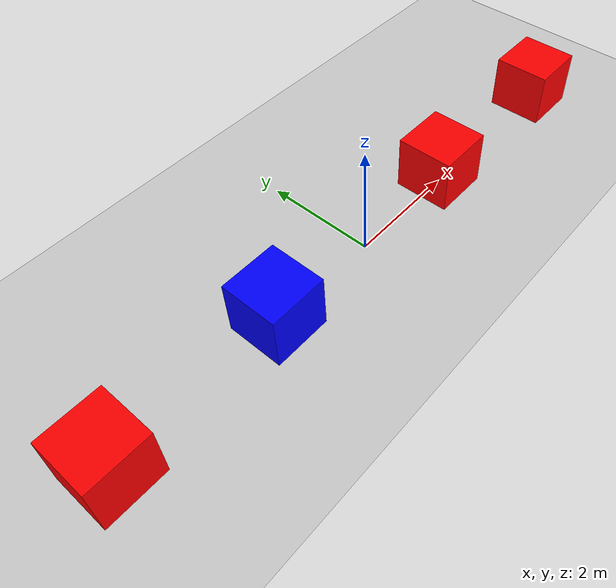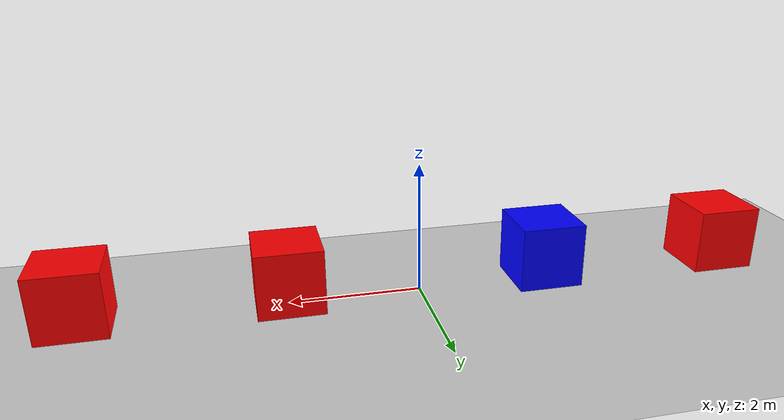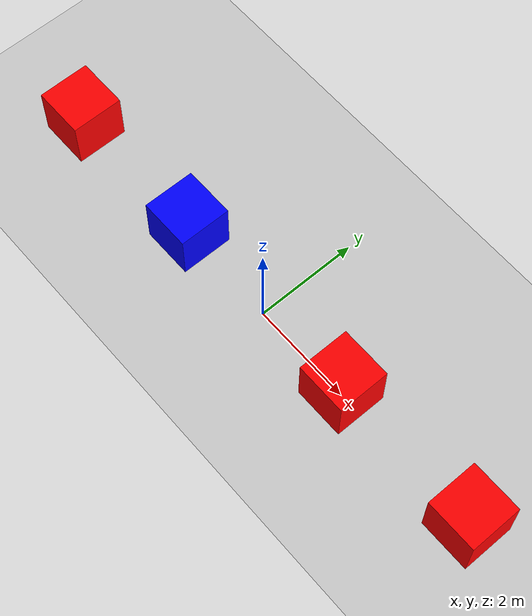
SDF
<?xml version="1.0" ?>
<!--
  Gazebo acoustic-comms plugin demo.
-->
<sdf version="1.6">
  <world name="acoustic_comms">
    <plugin
      filename="gz-sim-apply-link-wrench-system"
      name="gz::sim::systems::ApplyLinkWrench">
    </plugin>

    <physics name="1ms" type="ignored">
      <max_step_size>0.001</max_step_size>
      <real_time_factor>1.0</real_time_factor>
    </physics>
    <plugin
      filename="gz-sim-physics-system"
      name="gz::sim::systems::Physics">
    </plugin>
    <plugin
      filename="gz-sim-user-commands-system"
      name="gz::sim::systems::UserCommands">
    </plugin>
    <plugin
      filename="gz-sim-scene-broadcaster-system"
      name="gz::sim::systems::SceneBroadcaster">
    </plugin>
    <plugin
      filename="gz-sim-acoustic-comms-system"
      name="gz::sim::systems::AcousticComms">
      <max_range>6</max_range>
      <speed_of_sound>1400</speed_of_sound>

      <!-- Values are exaggerated here to make the -->
      <!-- packets drop. -->
      <propagation_model>
        <source_power>0.001</source_power>
        <noise_level>150</noise_level>
        <spectral_efficiency>7</spectral_efficiency>
        <seed>0</seed>
      </propagation_model>

    </plugin>

    <light type="directional" name="sun">
      <cast_shadows>true</cast_shadows>
      <pose>0 0 10 0 0 0</pose>
      <diffuse>1 1 1 1</diffuse>
      <specular>0.5 0.5 0.5 1</specular>
      <attenuation>
        <range>1000</range>
        <constant>0.9</constant>
        <linear>0.01</linear>
        <quadratic>0.001</quadratic>
      </attenuation>
      <direction>-0.5 0.1 -0.9</direction>
    </light>

    <model name="ground_plane">
      <static>true</static>
      <link name="link">
        <collision name="collision">
          <geometry>
            <plane>
              <normal>0 0 1</normal>
              <size>100 100</size>
            </plane>
          </geometry>
        </collision>
        <visual name="visual">
          <geometry>
            <plane>
              <normal>0 0 1</normal>
              <size>100 100</size>
            </plane>
          </geometry>
          <material>
            <ambient>0.8 0.8 0.8 1</ambient>
            <diffuse>0.8 0.8 0.8 1</diffuse>
            <specular>0.8 0.8 0.8 1</specular>
          </material>
        </visual>
      </link>
    </model>

    <model name="box1">
      <pose>2 0 0.5 0 0 0</pose>
      <link name="box_link">
        <inertial>
          <inertia>
            <ixx>0.16666</ixx>
            <ixy>0</ixy>
            <ixz>0</ixz>
            <iyy>0.16666</iyy>
            <iyz>0</iyz>
            <izz>0.16666</izz>
          </inertia>
          <mass>1.0</mass>
        </inertial>
        <collision name="box_collision">
          <geometry>
            <box>
              <size>1 1 1</size>
            </box>
          </geometry>
        </collision>

        <visual name="box_visual">
          <geometry>
            <box>
              <size>1 1 1</size>
            </box>
          </geometry>
          <material>
            <ambient>1 0 0 1</ambient>
            <diffuse>1 0 0 1</diffuse>
            <specular>1 0 0 1</specular>
          </material>
        </visual>
      </link>

      <plugin
        filename="gz-sim-comms-endpoint-system"
        name="gz::sim::systems::CommsEndpoint">
        <address>addr1</address>
        <topic>addr1/rx</topic>
      </plugin>
    </model>

    <model name="box2">
      <pose>-2 0 0.5 0 0 0</pose>
      <link name="box_link">
        <inertial>
          <inertia>
            <ixx>0.16666</ixx>
            <ixy>0</ixy>
            <ixz>0</ixz>
            <iyy>0.16666</iyy>
            <iyz>0</iyz>
            <izz>0.16666</izz>
          </inertia>
          <mass>1.0</mass>
        </inertial>
        <collision name="box_collision">
          <geometry>
            <box>
              <size>1 1 1</size>
            </box>
          </geometry>
        </collision>

        <visual name="box_visual">
          <geometry>
            <box>
              <size>1 1 1</size>
            </box>
          </geometry>
          <material>
            <ambient>0 0 1 1</ambient>
            <diffuse>0 0 1 1</diffuse>
            <specular>0 0 1 1</specular>
          </material>
        </visual>
      </link>

      <plugin
        filename="gz-sim-comms-endpoint-system"
        name="gz::sim::systems::CommsEndpoint">
        <address>addr2</address>
        <topic>addr2/rx</topic>
        <broker>
          <bind_service>/broker/bind</bind_service>
          <unbind_service>/broker/unbind</unbind_service>
        </broker>
      </plugin>

    </model>

    <model name="box3">
      <pose>5 0 0.5 0 0 0</pose>
      <link name="box_link">
        <inertial>
          <inertia>
            <ixx>0.16666</ixx>
            <ixy>0</ixy>
            <ixz>0</ixz>
            <iyy>0.16666</iyy>
            <iyz>0</iyz>
            <izz>0.16666</izz>
          </inertia>
          <mass>1.0</mass>
        </inertial>
        <collision name="box_collision">
          <geometry>
            <box>
              <size>1 1 1</size>
            </box>
          </geometry>
        </collision>

        <visual name="box_visual">
          <geometry>
            <box>
              <size>1 1 1</size>
            </box>
          </geometry>
          <material>
            <ambient>1 0 0 1</ambient>
            <diffuse>1 0 0 1</diffuse>
            <specular>1 0 0 1</specular>
          </material>
        </visual>
      </link>

      <plugin
        filename="gz-sim-comms-endpoint-system"
        name="gz::sim::systems::CommsEndpoint">
        <address>addr3</address>
        <topic>addr3/rx</topic>
      </plugin>
    </model>

    <model name="box4">
      <pose>-5 0 0.5 0 0 0</pose>
      <link name="box_link">
        <inertial>
          <inertia>
            <ixx>0.16666</ixx>
            <ixy>0</ixy>
            <ixz>0</ixz>
            <iyy>0.16666</iyy>
            <iyz>0</iyz>
            <izz>0.16666</izz>
          </inertia>
          <mass>1.0</mass>
        </inertial>
        <collision name="box_collision">
          <geometry>
            <box>
              <size>1 1 1</size>
            </box>
          </geometry>
        </collision>

        <visual name="box_visual">
          <geometry>
            <box>
              <size>1 1 1</size>
            </box>
          </geometry>
          <material>
            <ambient>1 0 0 1</ambient>
            <diffuse>1 0 0 1</diffuse>
            <specular>1 0 0 1</specular>
          </material>
        </visual>
      </link>

      <plugin
        filename="gz-sim-comms-endpoint-system"
        name="gz::sim::systems::CommsEndpoint">
        <address>addr4</address>
        <topic>addr4/rx</topic>
      </plugin>
    </model>

  </world>
</sdf>
